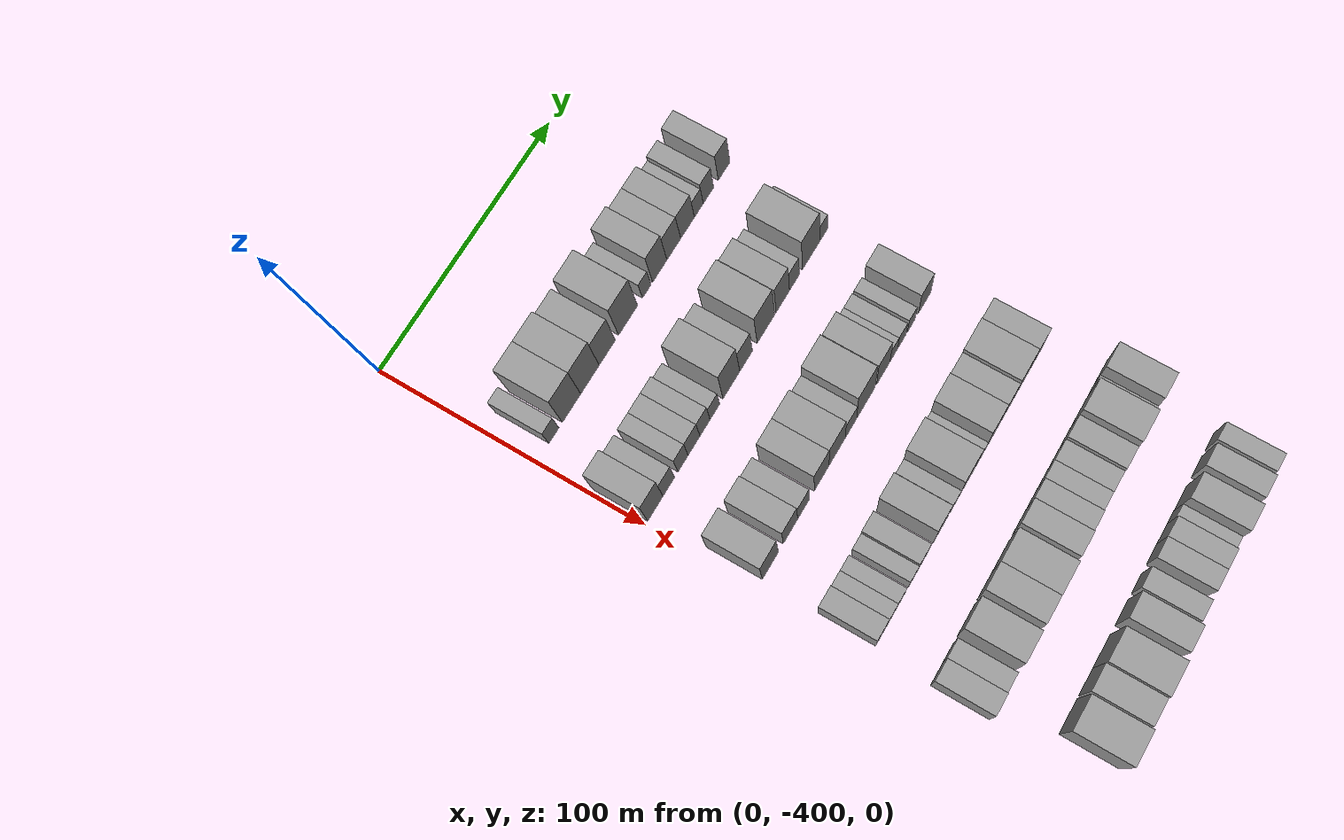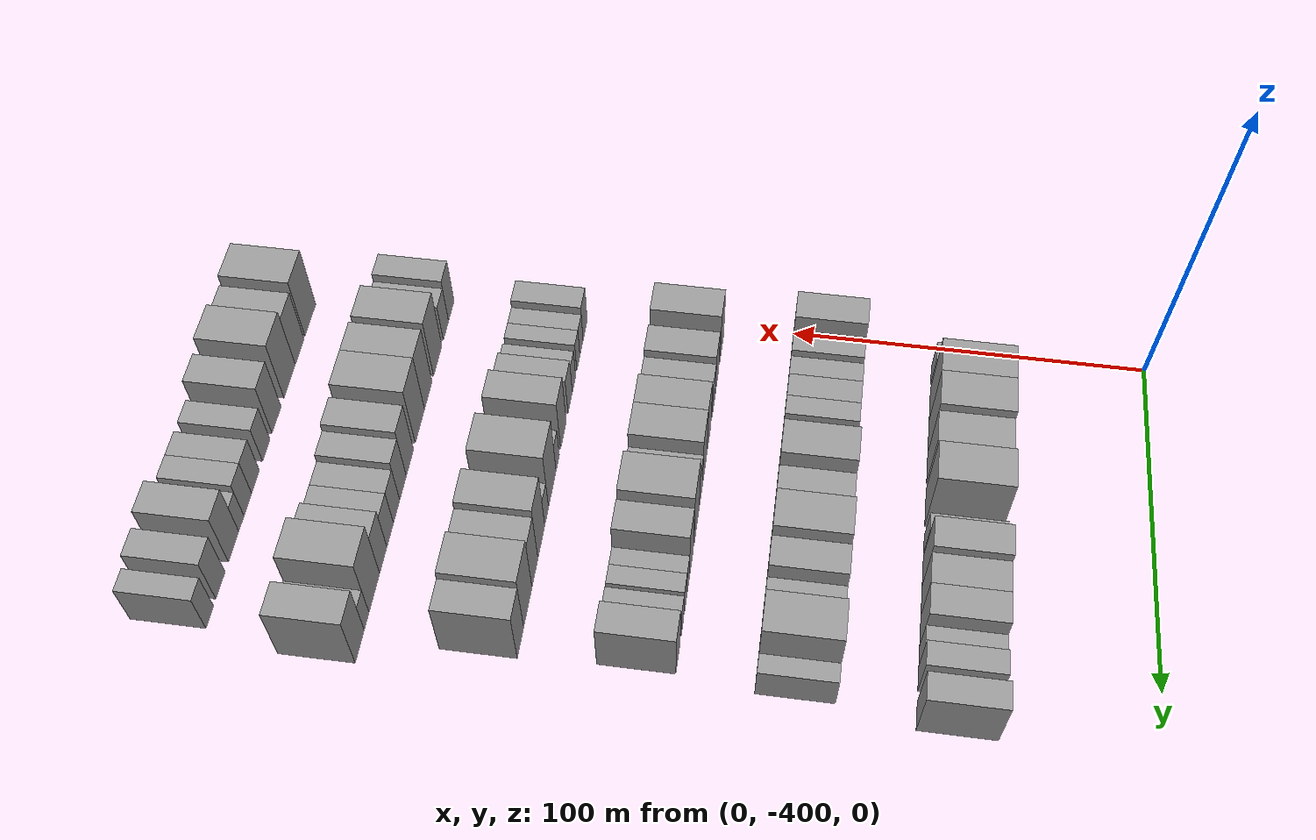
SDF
<sdf version="1.6">
 <world name="default">
  <model name="building_22">
   <static>1</static>
   <pose>50.0000 -390.0511 0 0.000000 0.000000 0.000000</pose>
   <link name="link">
    <pose>0 0 6.00 0 0 0</pose>
    <collision name="collision"><geometry><box><size>20.0000 5.8420 12.0000</size></box></geometry></collision>
    <visual name="visual">
     <cast_shadows>0</cast_shadows>
     <geometry><box><size>20.0000 5.8420 12.0000</size></box></geometry>
     <material>
      <script>
       <uri>model://grey_wall/materials/scripts</uri>
       <uri>model://grey_wall/materials/textures</uri>
       <name>vrc/grey_wall</name>
      </script>
     </material>
    </visual>
   </link>
  </model>
  <model name="building_23">
   <static>1</static>
   <pose>50.0000 -379.7609 0 0.000000 0.000000 0.000000</pose>
   <link name="link">
    <pose>0 0 12.00 0 0 0</pose>
    <collision name="collision"><geometry><box><size>20.0000 10.7384 24.0000</size></box></geometry></collision>
    <visual name="visual">
     <cast_shadows>0</cast_shadows>
     <geometry><box><size>20.0000 10.7384 24.0000</size></box></geometry>
     <material>
      <script>
       <uri>model://grey_wall/materials/scripts</uri>
       <uri>model://grey_wall/materials/textures</uri>
       <name>vrc/grey_wall</name>
      </script>
     </material>
    </visual>
   </link>
  </model>
  <model name="building_24">
   <static>1</static>
   <pose>50.0000 -368.8941 0 0.000000 0.000000 0.000000</pose>
   <link name="link">
    <pose>0 0 12.00 0 0 0</pose>
    <collision name="collision"><geometry><box><size>20.0000 10.9952 24.0000</size></box></geometry></collision>
    <visual name="visual">
     <cast_shadows>0</cast_shadows>
     <geometry><box><size>20.0000 10.9952 24.0000</size></box></geometry>
     <material>
      <script>
       <uri>model://grey_wall/materials/scripts</uri>
       <uri>model://grey_wall/materials/textures</uri>
       <name>vrc/grey_wall</name>
      </script>
     </material>
    </visual>
   </link>
  </model>
  <model name="building_25">
   <static>1</static>
   <pose>50.0000 -358.5665 0 0.000000 0.000000 0.000000</pose>
   <link name="link">
    <pose>0 0 10.50 0 0 0</pose>
    <collision name="collision"><geometry><box><size>20.0000 9.6600 21.0000</size></box></geometry></collision>
    <visual name="visual">
     <cast_shadows>0</cast_shadows>
     <geometry><box><size>20.0000 9.6600 21.0000</size></box></geometry>
     <material>
      <script>
       <uri>model://grey_wall/materials/scripts</uri>
       <uri>model://grey_wall/materials/textures</uri>
       <name>vrc/grey_wall</name>
      </script>
     </material>
    </visual>
   </link>
  </model>
  <model name="building_26">
   <static>1</static>
   <pose>50.0000 -345.9555 0 0.000000 0.000000 0.000000</pose>
   <link name="link">
    <pose>0 0 12.00 0 0 0</pose>
    <collision name="collision"><geometry><box><size>20.0000 11.5620 24.0000</size></box></geometry></collision>
    <visual name="visual">
     <cast_shadows>0</cast_shadows>
     <geometry><box><size>20.0000 11.5620 24.0000</size></box></geometry>
     <material>
      <script>
       <uri>model://grey_wall/materials/scripts</uri>
       <uri>model://grey_wall/materials/textures</uri>
       <name>vrc/grey_wall</name>
      </script>
     </material>
    </visual>
   </link>
  </model>
  <model name="building_27">
   <static>1</static>
   <pose>50.0000 -334.5388 0 0.000000 0.000000 0.000000</pose>
   <link name="link">
    <pose>0 0 6.00 0 0 0</pose>
    <collision name="collision"><geometry><box><size>20.0000 5.2714 12.0000</size></box></geometry></collision>
    <visual name="visual">
     <cast_shadows>0</cast_shadows>
     <geometry><box><size>20.0000 5.2714 12.0000</size></box></geometry>
     <material>
      <script>
       <uri>model://grey_wall/materials/scripts</uri>
       <uri>model://grey_wall/materials/textures</uri>
       <name>vrc/grey_wall</name>
      </script>
     </material>
    </visual>
   </link>
  </model>
  <model name="building_28">
   <static>1</static>
   <pose>50.0000 -326.4957 0 0.000000 0.000000 0.000000</pose>
   <link name="link">
    <pose>0 0 10.50 0 0 0</pose>
    <collision name="collision"><geometry><box><size>20.0000 8.8148 21.0000</size></box></geometry></collision>
    <visual name="visual">
     <cast_shadows>0</cast_shadows>
     <geometry><box><size>20.0000 8.8148 21.0000</size></box></geometry>
     <material>
      <script>
       <uri>model://grey_wall/materials/scripts</uri>
       <uri>model://grey_wall/materials/textures</uri>
       <name>vrc/grey_wall</name>
      </script>
     </material>
    </visual>
   </link>
  </model>
  <model name="building_29">
   <static>1</static>
   <pose>50.0000 -317.7686 0 0.000000 0.000000 0.000000</pose>
   <link name="link">
    <pose>0 0 9.00 0 0 0</pose>
    <collision name="collision"><geometry><box><size>20.0000 8.6393 18.0000</size></box></geometry></collision>
    <visual name="visual">
     <cast_shadows>0</cast_shadows>
     <geometry><box><size>20.0000 8.6393 18.0000</size></box></geometry>
     <material>
      <script>
       <uri>model://grey_wall/materials/scripts</uri>
       <uri>model://grey_wall/materials/textures</uri>
       <name>vrc/grey_wall</name>
      </script>
     </material>
    </visual>
   </link>
  </model>
  <model name="building_30">
   <static>1</static>
   <pose>50.0000 -309.1270 0 0.000000 0.000000 0.000000</pose>
   <link name="link">
    <pose>0 0 9.00 0 0 0</pose>
    <collision name="collision"><geometry><box><size>20.0000 8.6440 18.0000</size></box></geometry></collision>
    <visual name="visual">
     <cast_shadows>0</cast_shadows>
     <geometry><box><size>20.0000 8.6440 18.0000</size></box></geometry>
     <material>
      <script>
       <uri>model://grey_wall/materials/scripts</uri>
       <uri>model://grey_wall/materials/textures</uri>
       <name>vrc/grey_wall</name>
      </script>
     </material>
    </visual>
   </link>
  </model>
  <model name="building_31">
   <static>1</static>
   <pose>50.0000 -302.0066 0 0.000000 0.000000 0.000000</pose>
   <link name="link">
    <pose>0 0 6.00 0 0 0</pose>
    <collision name="collision"><geometry><box><size>20.0000 5.5969 12.0000</size></box></geometry></collision>
    <visual name="visual">
     <cast_shadows>0</cast_shadows>
     <geometry><box><size>20.0000 5.5969 12.0000</size></box></geometry>
     <material>
      <script>
       <uri>model://grey_wall/materials/scripts</uri>
       <uri>model://grey_wall/materials/textures</uri>
       <name>vrc/grey_wall</name>
      </script>
     </material>
    </visual>
   </link>
  </model>
  <model name="building_32">
   <static>1</static>
   <pose>50.0000 -295.8793 0 0.000000 0.000000 0.000000</pose>
   <link name="link">
    <pose>0 0 7.50 0 0 0</pose>
    <collision name="collision"><geometry><box><size>20.0000 6.6576 15.0000</size></box></geometry></collision>
    <visual name="visual">
     <cast_shadows>0</cast_shadows>
     <geometry><box><size>20.0000 6.6576 15.0000</size></box></geometry>
     <material>
      <script>
       <uri>model://grey_wall/materials/scripts</uri>
       <uri>model://grey_wall/materials/textures</uri>
       <name>vrc/grey_wall</name>
      </script>
     </material>
    </visual>
   </link>
  </model>
  <model name="building_33">
   <static>1</static>
   <pose>50.0000 -285.7998 0 0.000000 0.000000 0.000000</pose>
   <link name="link">
    <pose>0 0 9.00 0 0 0</pose>
    <collision name="collision"><geometry><box><size>20.0000 7.5014 18.0000</size></box></geometry></collision>
    <visual name="visual">
     <cast_shadows>0</cast_shadows>
     <geometry><box><size>20.0000 7.5014 18.0000</size></box></geometry>
     <material>
      <script>
       <uri>model://grey_wall/materials/scripts</uri>
       <uri>model://grey_wall/materials/textures</uri>
       <name>vrc/grey_wall</name>
      </script>
     </material>
    </visual>
   </link>
  </model>
  <model name="building_168">
   <static>1</static>
   <pose>90.0000 -394.0648 0 0.000000 0.000000 0.000000</pose>
   <link name="link">
    <pose>0 0 10.50 0 0 0</pose>
    <collision name="collision"><geometry><box><size>20.0000 9.0409 21.0000</size></box></geometry></collision>
    <visual name="visual">
     <cast_shadows>0</cast_shadows>
     <geometry><box><size>20.0000 9.0409 21.0000</size></box></geometry>
     <material>
      <script>
       <uri>model://grey_wall/materials/scripts</uri>
       <uri>model://grey_wall/materials/textures</uri>
       <name>vrc/grey_wall</name>
      </script>
     </material>
    </visual>
   </link>
  </model>
  <model name="building_169">
   <static>1</static>
   <pose>90.0000 -386.0669 0 0.000000 0.000000 0.000000</pose>
   <link name="link">
    <pose>0 0 7.50 0 0 0</pose>
    <collision name="collision"><geometry><box><size>20.0000 6.9549 15.0000</size></box></geometry></collision>
    <visual name="visual">
     <cast_shadows>0</cast_shadows>
     <geometry><box><size>20.0000 6.9549 15.0000</size></box></geometry>
     <material>
      <script>
       <uri>model://grey_wall/materials/scripts</uri>
       <uri>model://grey_wall/materials/textures</uri>
       <name>vrc/grey_wall</name>
      </script>
     </material>
    </visual>
   </link>
  </model>
  <model name="building_170">
   <static>1</static>
   <pose>90.0000 -377.5510 0 0.000000 0.000000 0.000000</pose>
   <link name="link">
    <pose>0 0 7.50 0 0 0</pose>
    <collision name="collision"><geometry><box><size>20.0000 6.0769 15.0000</size></box></geometry></collision>
    <visual name="visual">
     <cast_shadows>0</cast_shadows>
     <geometry><box><size>20.0000 6.0769 15.0000</size></box></geometry>
     <material>
      <script>
       <uri>model://grey_wall/materials/scripts</uri>
       <uri>model://grey_wall/materials/textures</uri>
       <name>vrc/grey_wall</name>
      </script>
     </material>
    </visual>
   </link>
  </model>
  <model name="building_171">
   <static>1</static>
   <pose>90.0000 -370.9142 0 0.000000 0.000000 0.000000</pose>
   <link name="link">
    <pose>0 0 7.50 0 0 0</pose>
    <collision name="collision"><geometry><box><size>20.0000 7.1967 15.0000</size></box></geometry></collision>
    <visual name="visual">
     <cast_shadows>0</cast_shadows>
     <geometry><box><size>20.0000 7.1967 15.0000</size></box></geometry>
     <material>
      <script>
       <uri>model://grey_wall/materials/scripts</uri>
       <uri>model://grey_wall/materials/textures</uri>
       <name>vrc/grey_wall</name>
      </script>
     </material>
    </visual>
   </link>
  </model>
  <model name="building_172">
   <static>1</static>
   <pose>90.0000 -364.2547 0 0.000000 0.000000 0.000000</pose>
   <link name="link">
    <pose>0 0 7.50 0 0 0</pose>
    <collision name="collision"><geometry><box><size>20.0000 6.1224 15.0000</size></box></geometry></collision>
    <visual name="visual">
     <cast_shadows>0</cast_shadows>
     <geometry><box><size>20.0000 6.1224 15.0000</size></box></geometry>
     <material>
      <script>
       <uri>model://grey_wall/materials/scripts</uri>
       <uri>model://grey_wall/materials/textures</uri>
       <name>vrc/grey_wall</name>
      </script>
     </material>
    </visual>
   </link>
  </model>
  <model name="building_173">
   <static>1</static>
   <pose>90.0000 -358.2039 0 0.000000 0.000000 0.000000</pose>
   <link name="link">
    <pose>0 0 6.00 0 0 0</pose>
    <collision name="collision"><geometry><box><size>20.0000 5.9791 12.0000</size></box></geometry></collision>
    <visual name="visual">
     <cast_shadows>0</cast_shadows>
     <geometry><box><size>20.0000 5.9791 12.0000</size></box></geometry>
     <material>
      <script>
       <uri>model://grey_wall/materials/scripts</uri>
       <uri>model://grey_wall/materials/textures</uri>
       <name>vrc/grey_wall</name>
      </script>
     </material>
    </visual>
   </link>
  </model>
  <model name="building_174">
   <static>1</static>
   <pose>90.0000 -348.0177 0 0.000000 0.000000 0.000000</pose>
   <link name="link">
    <pose>0 0 12.00 0 0 0</pose>
    <collision name="collision"><geometry><box><size>20.0000 10.3933 24.0000</size></box></geometry></collision>
    <visual name="visual">
     <cast_shadows>0</cast_shadows>
     <geometry><box><size>20.0000 10.3933 24.0000</size></box></geometry>
     <material>
      <script>
       <uri>model://grey_wall/materials/scripts</uri>
       <uri>model://grey_wall/materials/textures</uri>
       <name>vrc/grey_wall</name>
      </script>
     </material>
    </visual>
   </link>
  </model>
  <model name="building_175">
   <static>1</static>
   <pose>90.0000 -338.8537 0 0.000000 0.000000 0.000000</pose>
   <link name="link">
    <pose>0 0 9.00 0 0 0</pose>
    <collision name="collision"><geometry><box><size>20.0000 7.9347 18.0000</size></box></geometry></collision>
    <visual name="visual">
     <cast_shadows>0</cast_shadows>
     <geometry><box><size>20.0000 7.9347 18.0000</size></box></geometry>
     <material>
      <script>
       <uri>model://grey_wall/materials/scripts</uri>
       <uri>model://grey_wall/materials/textures</uri>
       <name>vrc/grey_wall</name>
      </script>
     </material>
    </visual>
   </link>
  </model>
  <model name="building_176">
   <static>1</static>
   <pose>90.0000 -326.4017 0 0.000000 0.000000 0.000000</pose>
   <link name="link">
    <pose>0 0 12.00 0 0 0</pose>
    <collision name="collision"><geometry><box><size>20.0000 10.9694 24.0000</size></box></geometry></collision>
    <visual name="visual">
     <cast_shadows>0</cast_shadows>
     <geometry><box><size>20.0000 10.9694 24.0000</size></box></geometry>
     <material>
      <script>
       <uri>model://grey_wall/materials/scripts</uri>
       <uri>model://grey_wall/materials/textures</uri>
       <name>vrc/grey_wall</name>
      </script>
     </material>
    </visual>
   </link>
  </model>
  <model name="building_177">
   <static>1</static>
   <pose>90.0000 -315.6308 0 0.000000 0.000000 0.000000</pose>
   <link name="link">
    <pose>0 0 10.50 0 0 0</pose>
    <collision name="collision"><geometry><box><size>20.0000 8.5724 21.0000</size></box></geometry></collision>
    <visual name="visual">
     <cast_shadows>0</cast_shadows>
     <geometry><box><size>20.0000 8.5724 21.0000</size></box></geometry>
     <material>
      <script>
       <uri>model://grey_wall/materials/scripts</uri>
       <uri>model://grey_wall/materials/textures</uri>
       <name>vrc/grey_wall</name>
      </script>
     </material>
    </visual>
   </link>
  </model>
  <model name="building_178">
   <static>1</static>
   <pose>90.0000 -308.1661 0 0.000000 0.000000 0.000000</pose>
   <link name="link">
    <pose>0 0 7.50 0 0 0</pose>
    <collision name="collision"><geometry><box><size>20.0000 6.3571 15.0000</size></box></geometry></collision>
    <visual name="visual">
     <cast_shadows>0</cast_shadows>
     <geometry><box><size>20.0000 6.3571 15.0000</size></box></geometry>
     <material>
      <script>
       <uri>model://grey_wall/materials/scripts</uri>
       <uri>model://grey_wall/materials/textures</uri>
       <name>vrc/grey_wall</name>
      </script>
     </material>
    </visual>
   </link>
  </model>
  <model name="building_179">
   <static>1</static>
   <pose>90.0000 -297.3634 0 0.000000 0.000000 0.000000</pose>
   <link name="link">
    <pose>0 0 12.00 0 0 0</pose>
    <collision name="collision"><geometry><box><size>20.0000 11.2482 24.0000</size></box></geometry></collision>
    <visual name="visual">
     <cast_shadows>0</cast_shadows>
     <geometry><box><size>20.0000 11.2482 24.0000</size></box></geometry>
     <material>
      <script>
       <uri>model://grey_wall/materials/scripts</uri>
       <uri>model://grey_wall/materials/textures</uri>
       <name>vrc/grey_wall</name>
      </script>
     </material>
    </visual>
   </link>
  </model>
  <model name="building_180">
   <static>1</static>
   <pose>90.0000 -289.0930 0 0.000000 0.000000 0.000000</pose>
   <link name="link">
    <pose>0 0 6.00 0 0 0</pose>
    <collision name="collision"><geometry><box><size>20.0000 5.2927 12.0000</size></box></geometry></collision>
    <visual name="visual">
     <cast_shadows>0</cast_shadows>
     <geometry><box><size>20.0000 5.2927 12.0000</size></box></geometry>
     <material>
      <script>
       <uri>model://grey_wall/materials/scripts</uri>
       <uri>model://grey_wall/materials/textures</uri>
       <name>vrc/grey_wall</name>
      </script>
     </material>
    </visual>
   </link>
  </model>
  <model name="building_297">
   <static>1</static>
   <pose>130.0000 -391.6073 0 0.000000 0.000000 0.000000</pose>
   <link name="link">
    <pose>0 0 10.50 0 0 0</pose>
    <collision name="collision"><geometry><box><size>20.0000 9.6499 21.0000</size></box></geometry></collision>
    <visual name="visual">
     <cast_shadows>0</cast_shadows>
     <geometry><box><size>20.0000 9.6499 21.0000</size></box></geometry>
     <material>
      <script>
       <uri>model://grey_wall/materials/scripts</uri>
       <uri>model://grey_wall/materials/textures</uri>
       <name>vrc/grey_wall</name>
      </script>
     </material>
    </visual>
   </link>
  </model>
  <model name="building_298">
   <static>1</static>
   <pose>130.0000 -379.3631 0 0.000000 0.000000 0.000000</pose>
   <link name="link">
    <pose>0 0 9.00 0 0 0</pose>
    <collision name="collision"><geometry><box><size>20.0000 8.8384 18.0000</size></box></geometry></collision>
    <visual name="visual">
     <cast_shadows>0</cast_shadows>
     <geometry><box><size>20.0000 8.8384 18.0000</size></box></geometry>
     <material>
      <script>
       <uri>model://grey_wall/materials/scripts</uri>
       <uri>model://grey_wall/materials/textures</uri>
       <name>vrc/grey_wall</name>
      </script>
     </material>
    </visual>
   </link>
  </model>
  <model name="building_299">
   <static>1</static>
   <pose>130.0000 -371.2778 0 0.000000 0.000000 0.000000</pose>
   <link name="link">
    <pose>0 0 7.50 0 0 0</pose>
    <collision name="collision"><geometry><box><size>20.0000 7.3323 15.0000</size></box></geometry></collision>
    <visual name="visual">
     <cast_shadows>0</cast_shadows>
     <geometry><box><size>20.0000 7.3323 15.0000</size></box></geometry>
     <material>
      <script>
       <uri>model://grey_wall/materials/scripts</uri>
       <uri>model://grey_wall/materials/textures</uri>
       <name>vrc/grey_wall</name>
      </script>
     </material>
    </visual>
   </link>
  </model>
  <model name="building_300">
   <static>1</static>
   <pose>130.0000 -359.9958 0 0.000000 0.000000 0.000000</pose>
   <link name="link">
    <pose>0 0 10.50 0 0 0</pose>
    <collision name="collision"><geometry><box><size>20.0000 9.2318 21.0000</size></box></geometry></collision>
    <visual name="visual">
     <cast_shadows>0</cast_shadows>
     <geometry><box><size>20.0000 9.2318 21.0000</size></box></geometry>
     <material>
      <script>
       <uri>model://grey_wall/materials/scripts</uri>
       <uri>model://grey_wall/materials/textures</uri>
       <name>vrc/grey_wall</name>
      </script>
     </material>
    </visual>
   </link>
  </model>
  <model name="building_301">
   <static>1</static>
   <pose>130.0000 -350.2088 0 0.000000 0.000000 0.000000</pose>
   <link name="link">
    <pose>0 0 10.50 0 0 0</pose>
    <collision name="collision"><geometry><box><size>20.0000 10.3421 21.0000</size></box></geometry></collision>
    <visual name="visual">
     <cast_shadows>0</cast_shadows>
     <geometry><box><size>20.0000 10.3421 21.0000</size></box></geometry>
     <material>
      <script>
       <uri>model://grey_wall/materials/scripts</uri>
       <uri>model://grey_wall/materials/textures</uri>
       <name>vrc/grey_wall</name>
      </script>
     </material>
    </visual>
   </link>
  </model>
  <model name="building_302">
   <static>1</static>
   <pose>130.0000 -341.4178 0 0.000000 0.000000 0.000000</pose>
   <link name="link">
    <pose>0 0 7.50 0 0 0</pose>
    <collision name="collision"><geometry><box><size>20.0000 7.2398 15.0000</size></box></geometry></collision>
    <visual name="visual">
     <cast_shadows>0</cast_shadows>
     <geometry><box><size>20.0000 7.2398 15.0000</size></box></geometry>
     <material>
      <script>
       <uri>model://grey_wall/materials/scripts</uri>
       <uri>model://grey_wall/materials/textures</uri>
       <name>vrc/grey_wall</name>
      </script>
     </material>
    </visual>
   </link>
  </model>
  <model name="building_303">
   <static>1</static>
   <pose>130.0000 -331.9038 0 0.000000 0.000000 0.000000</pose>
   <link name="link">
    <pose>0 0 12.00 0 0 0</pose>
    <collision name="collision"><geometry><box><size>20.0000 11.7884 24.0000</size></box></geometry></collision>
    <visual name="visual">
     <cast_shadows>0</cast_shadows>
     <geometry><box><size>20.0000 11.7884 24.0000</size></box></geometry>
     <material>
      <script>
       <uri>model://grey_wall/materials/scripts</uri>
       <uri>model://grey_wall/materials/textures</uri>
       <name>vrc/grey_wall</name>
      </script>
     </material>
    </visual>
   </link>
  </model>
  <model name="building_304">
   <static>1</static>
   <pose>130.0000 -320.6479 0 0.000000 0.000000 0.000000</pose>
   <link name="link">
    <pose>0 0 10.50 0 0 0</pose>
    <collision name="collision"><geometry><box><size>20.0000 8.7233 21.0000</size></box></geometry></collision>
    <visual name="visual">
     <cast_shadows>0</cast_shadows>
     <geometry><box><size>20.0000 8.7233 21.0000</size></box></geometry>
     <material>
      <script>
       <uri>model://grey_wall/materials/scripts</uri>
       <uri>model://grey_wall/materials/textures</uri>
       <name>vrc/grey_wall</name>
      </script>
     </material>
    </visual>
   </link>
  </model>
  <model name="building_305">
   <static>1</static>
   <pose>130.0000 -313.7650 0 0.000000 0.000000 0.000000</pose>
   <link name="link">
    <pose>0 0 6.00 0 0 0</pose>
    <collision name="collision"><geometry><box><size>20.0000 5.0424 12.0000</size></box></geometry></collision>
    <visual name="visual">
     <cast_shadows>0</cast_shadows>
     <geometry><box><size>20.0000 5.0424 12.0000</size></box></geometry>
     <material>
      <script>
       <uri>model://grey_wall/materials/scripts</uri>
       <uri>model://grey_wall/materials/textures</uri>
       <name>vrc/grey_wall</name>
      </script>
     </material>
    </visual>
   </link>
  </model>
  <model name="building_306">
   <static>1</static>
   <pose>130.0000 -308.5142 0 0.000000 0.000000 0.000000</pose>
   <link name="link">
    <pose>0 0 6.00 0 0 0</pose>
    <collision name="collision"><geometry><box><size>20.0000 5.4593 12.0000</size></box></geometry></collision>
    <visual name="visual">
     <cast_shadows>0</cast_shadows>
     <geometry><box><size>20.0000 5.4593 12.0000</size></box></geometry>
     <material>
      <script>
       <uri>model://grey_wall/materials/scripts</uri>
       <uri>model://grey_wall/materials/textures</uri>
       <name>vrc/grey_wall</name>
      </script>
     </material>
    </visual>
   </link>
  </model>
  <model name="building_307">
   <static>1</static>
   <pose>130.0000 -302.1926 0 0.000000 0.000000 0.000000</pose>
   <link name="link">
    <pose>0 0 6.00 0 0 0</pose>
    <collision name="collision"><geometry><box><size>20.0000 5.1838 12.0000</size></box></geometry></collision>
    <visual name="visual">
     <cast_shadows>0</cast_shadows>
     <geometry><box><size>20.0000 5.1838 12.0000</size></box></geometry>
     <material>
      <script>
       <uri>model://grey_wall/materials/scripts</uri>
       <uri>model://grey_wall/materials/textures</uri>
       <name>vrc/grey_wall</name>
      </script>
     </material>
    </visual>
   </link>
  </model>
  <model name="building_308">
   <static>1</static>
   <pose>130.0000 -293.3657 0 0.000000 0.000000 0.000000</pose>
   <link name="link">
    <pose>0 0 9.00 0 0 0</pose>
    <collision name="collision"><geometry><box><size>20.0000 8.4700 18.0000</size></box></geometry></collision>
    <visual name="visual">
     <cast_shadows>0</cast_shadows>
     <geometry><box><size>20.0000 8.4700 18.0000</size></box></geometry>
     <material>
      <script>
       <uri>model://grey_wall/materials/scripts</uri>
       <uri>model://grey_wall/materials/textures</uri>
       <name>vrc/grey_wall</name>
      </script>
     </material>
    </visual>
   </link>
  </model>
  <model name="building_437">
   <static>1</static>
   <pose>170.0000 -393.1007 0 0.000000 0.000000 0.000000</pose>
   <link name="link">
    <pose>0 0 7.50 0 0 0</pose>
    <collision name="collision"><geometry><box><size>20.0000 7.3663 15.0000</size></box></geometry></collision>
    <visual name="visual">
     <cast_shadows>0</cast_shadows>
     <geometry><box><size>20.0000 7.3663 15.0000</size></box></geometry>
     <material>
      <script>
       <uri>model://grey_wall/materials/scripts</uri>
       <uri>model://grey_wall/materials/textures</uri>
       <name>vrc/grey_wall</name>
      </script>
     </material>
    </visual>
   </link>
  </model>
  <model name="building_438">
   <static>1</static>
   <pose>170.0000 -386.5834 0 0.000000 0.000000 0.000000</pose>
   <link name="link">
    <pose>0 0 6.00 0 0 0</pose>
    <collision name="collision"><geometry><box><size>20.0000 5.6684 12.0000</size></box></geometry></collision>
    <visual name="visual">
     <cast_shadows>0</cast_shadows>
     <geometry><box><size>20.0000 5.6684 12.0000</size></box></geometry>
     <material>
      <script>
       <uri>model://grey_wall/materials/scripts</uri>
       <uri>model://grey_wall/materials/textures</uri>
       <name>vrc/grey_wall</name>
      </script>
     </material>
    </visual>
   </link>
  </model>
  <model name="building_439">
   <static>1</static>
   <pose>170.0000 -381.0757 0 0.000000 0.000000 0.000000</pose>
   <link name="link">
    <pose>0 0 6.00 0 0 0</pose>
    <collision name="collision"><geometry><box><size>20.0000 5.3468 12.0000</size></box></geometry></collision>
    <visual name="visual">
     <cast_shadows>0</cast_shadows>
     <geometry><box><size>20.0000 5.3468 12.0000</size></box></geometry>
     <material>
      <script>
       <uri>model://grey_wall/materials/scripts</uri>
       <uri>model://grey_wall/materials/textures</uri>
       <name>vrc/grey_wall</name>
      </script>
     </material>
    </visual>
   </link>
  </model>
  <model name="building_440">
   <static>1</static>
   <pose>170.0000 -373.6140 0 0.000000 0.000000 0.000000</pose>
   <link name="link">
    <pose>0 0 6.00 0 0 0</pose>
    <collision name="collision"><geometry><box><size>20.0000 5.5766 12.0000</size></box></geometry></collision>
    <visual name="visual">
     <cast_shadows>0</cast_shadows>
     <geometry><box><size>20.0000 5.5766 12.0000</size></box></geometry>
     <material>
      <script>
       <uri>model://grey_wall/materials/scripts</uri>
       <uri>model://grey_wall/materials/textures</uri>
       <name>vrc/grey_wall</name>
      </script>
     </material>
    </visual>
   </link>
  </model>
  <model name="building_441">
   <static>1</static>
   <pose>170.0000 -367.2083 0 0.000000 0.000000 0.000000</pose>
   <link name="link">
    <pose>0 0 7.50 0 0 0</pose>
    <collision name="collision"><geometry><box><size>20.0000 7.2350 15.0000</size></box></geometry></collision>
    <visual name="visual">
     <cast_shadows>0</cast_shadows>
     <geometry><box><size>20.0000 7.2350 15.0000</size></box></geometry>
     <material>
      <script>
       <uri>model://grey_wall/materials/scripts</uri>
       <uri>model://grey_wall/materials/textures</uri>
       <name>vrc/grey_wall</name>
      </script>
     </material>
    </visual>
   </link>
  </model>
  <model name="building_442">
   <static>1</static>
   <pose>170.0000 -356.0742 0 0.000000 0.000000 0.000000</pose>
   <link name="link">
    <pose>0 0 10.50 0 0 0</pose>
    <collision name="collision"><geometry><box><size>20.0000 9.0331 21.0000</size></box></geometry></collision>
    <visual name="visual">
     <cast_shadows>0</cast_shadows>
     <geometry><box><size>20.0000 9.0331 21.0000</size></box></geometry>
     <material>
      <script>
       <uri>model://grey_wall/materials/scripts</uri>
       <uri>model://grey_wall/materials/textures</uri>
       <name>vrc/grey_wall</name>
      </script>
     </material>
    </visual>
   </link>
  </model>
  <model name="building_443">
   <static>1</static>
   <pose>170.0000 -346.9433 0 0.000000 0.000000 0.000000</pose>
   <link name="link">
    <pose>0 0 6.00 0 0 0</pose>
    <collision name="collision"><geometry><box><size>20.0000 5.2286 12.0000</size></box></geometry></collision>
    <visual name="visual">
     <cast_shadows>0</cast_shadows>
     <geometry><box><size>20.0000 5.2286 12.0000</size></box></geometry>
     <material>
      <script>
       <uri>model://grey_wall/materials/scripts</uri>
       <uri>model://grey_wall/materials/textures</uri>
       <name>vrc/grey_wall</name>
      </script>
     </material>
    </visual>
   </link>
  </model>
  <model name="building_444">
   <static>1</static>
   <pose>170.0000 -338.5435 0 0.000000 0.000000 0.000000</pose>
   <link name="link">
    <pose>0 0 12.00 0 0 0</pose>
    <collision name="collision"><geometry><box><size>20.0000 11.5711 24.0000</size></box></geometry></collision>
    <visual name="visual">
     <cast_shadows>0</cast_shadows>
     <geometry><box><size>20.0000 11.5711 24.0000</size></box></geometry>
     <material>
      <script>
       <uri>model://grey_wall/materials/scripts</uri>
       <uri>model://grey_wall/materials/textures</uri>
       <name>vrc/grey_wall</name>
      </script>
     </material>
    </visual>
   </link>
  </model>
  <model name="building_445">
   <static>1</static>
   <pose>170.0000 -329.8842 0 0.000000 0.000000 0.000000</pose>
   <link name="link">
    <pose>0 0 6.00 0 0 0</pose>
    <collision name="collision"><geometry><box><size>20.0000 5.7475 12.0000</size></box></geometry></collision>
    <visual name="visual">
     <cast_shadows>0</cast_shadows>
     <geometry><box><size>20.0000 5.7475 12.0000</size></box></geometry>
     <material>
      <script>
       <uri>model://grey_wall/materials/scripts</uri>
       <uri>model://grey_wall/materials/textures</uri>
       <name>vrc/grey_wall</name>
      </script>
     </material>
    </visual>
   </link>
  </model>
  <model name="building_446">
   <static>1</static>
   <pose>170.0000 -321.9696 0 0.000000 0.000000 0.000000</pose>
   <link name="link">
    <pose>0 0 12.00 0 0 0</pose>
    <collision name="collision"><geometry><box><size>20.0000 10.0817 24.0000</size></box></geometry></collision>
    <visual name="visual">
     <cast_shadows>0</cast_shadows>
     <geometry><box><size>20.0000 10.0817 24.0000</size></box></geometry>
     <material>
      <script>
       <uri>model://grey_wall/materials/scripts</uri>
       <uri>model://grey_wall/materials/textures</uri>
       <name>vrc/grey_wall</name>
      </script>
     </material>
    </visual>
   </link>
  </model>
  <model name="building_447">
   <static>1</static>
   <pose>170.0000 -312.6576 0 0.000000 0.000000 0.000000</pose>
   <link name="link">
    <pose>0 0 10.50 0 0 0</pose>
    <collision name="collision"><geometry><box><size>20.0000 8.5422 21.0000</size></box></geometry></collision>
    <visual name="visual">
     <cast_shadows>0</cast_shadows>
     <geometry><box><size>20.0000 8.5422 21.0000</size></box></geometry>
     <material>
      <script>
       <uri>model://grey_wall/materials/scripts</uri>
       <uri>model://grey_wall/materials/textures</uri>
       <name>vrc/grey_wall</name>
      </script>
     </material>
    </visual>
   </link>
  </model>
  <model name="building_448">
   <static>1</static>
   <pose>170.0000 -302.5746 0 0.000000 0.000000 0.000000</pose>
   <link name="link">
    <pose>0 0 12.00 0 0 0</pose>
    <collision name="collision"><geometry><box><size>20.0000 11.6238 24.0000</size></box></geometry></collision>
    <visual name="visual">
     <cast_shadows>0</cast_shadows>
     <geometry><box><size>20.0000 11.6238 24.0000</size></box></geometry>
     <material>
      <script>
       <uri>model://grey_wall/materials/scripts</uri>
       <uri>model://grey_wall/materials/textures</uri>
       <name>vrc/grey_wall</name>
      </script>
     </material>
    </visual>
   </link>
  </model>
  <model name="building_449">
   <static>1</static>
   <pose>170.0000 -292.4098 0 0.000000 0.000000 0.000000</pose>
   <link name="link">
    <pose>0 0 10.50 0 0 0</pose>
    <collision name="collision"><geometry><box><size>20.0000 8.7058 21.0000</size></box></geometry></collision>
    <visual name="visual">
     <cast_shadows>0</cast_shadows>
     <geometry><box><size>20.0000 8.7058 21.0000</size></box></geometry>
     <material>
      <script>
       <uri>model://grey_wall/materials/scripts</uri>
       <uri>model://grey_wall/materials/textures</uri>
       <name>vrc/grey_wall</name>
      </script>
     </material>
    </visual>
   </link>
  </model>
  <model name="building_567">
   <static>1</static>
   <pose>210.0000 -394.9767 0 0.000000 0.000000 0.000000</pose>
   <link name="link">
    <pose>0 0 9.00 0 0 0</pose>
    <collision name="collision"><geometry><box><size>20.0000 7.6325 18.0000</size></box></geometry></collision>
    <visual name="visual">
     <cast_shadows>0</cast_shadows>
     <geometry><box><size>20.0000 7.6325 18.0000</size></box></geometry>
     <material>
      <script>
       <uri>model://grey_wall/materials/scripts</uri>
       <uri>model://grey_wall/materials/textures</uri>
       <name>vrc/grey_wall</name>
      </script>
     </material>
    </visual>
   </link>
  </model>
  <model name="building_568">
   <static>1</static>
   <pose>210.0000 -387.6490 0 0.000000 0.000000 0.000000</pose>
   <link name="link">
    <pose>0 0 7.50 0 0 0</pose>
    <collision name="collision"><geometry><box><size>20.0000 7.0229 15.0000</size></box></geometry></collision>
    <visual name="visual">
     <cast_shadows>0</cast_shadows>
     <geometry><box><size>20.0000 7.0229 15.0000</size></box></geometry>
     <material>
      <script>
       <uri>model://grey_wall/materials/scripts</uri>
       <uri>model://grey_wall/materials/textures</uri>
       <name>vrc/grey_wall</name>
      </script>
     </material>
    </visual>
   </link>
  </model>
  <model name="building_569">
   <static>1</static>
   <pose>210.0000 -376.6925 0 0.000000 0.000000 0.000000</pose>
   <link name="link">
    <pose>0 0 12.00 0 0 0</pose>
    <collision name="collision"><geometry><box><size>20.0000 10.8902 24.0000</size></box></geometry></collision>
    <visual name="visual">
     <cast_shadows>0</cast_shadows>
     <geometry><box><size>20.0000 10.8902 24.0000</size></box></geometry>
     <material>
      <script>
       <uri>model://grey_wall/materials/scripts</uri>
       <uri>model://grey_wall/materials/textures</uri>
       <name>vrc/grey_wall</name>
      </script>
     </material>
    </visual>
   </link>
  </model>
  <model name="building_570">
   <static>1</static>
   <pose>210.0000 -364.4446 0 0.000000 0.000000 0.000000</pose>
   <link name="link">
    <pose>0 0 12.00 0 0 0</pose>
    <collision name="collision"><geometry><box><size>20.0000 9.6057 24.0000</size></box></geometry></collision>
    <visual name="visual">
     <cast_shadows>0</cast_shadows>
     <geometry><box><size>20.0000 9.6057 24.0000</size></box></geometry>
     <material>
      <script>
       <uri>model://grey_wall/materials/scripts</uri>
       <uri>model://grey_wall/materials/textures</uri>
       <name>vrc/grey_wall</name>
      </script>
     </material>
    </visual>
   </link>
  </model>
  <model name="building_571">
   <static>1</static>
   <pose>210.0000 -353.8946 0 0.000000 0.000000 0.000000</pose>
   <link name="link">
    <pose>0 0 12.00 0 0 0</pose>
    <collision name="collision"><geometry><box><size>20.0000 11.4943 24.0000</size></box></geometry></collision>
    <visual name="visual">
     <cast_shadows>0</cast_shadows>
     <geometry><box><size>20.0000 11.4943 24.0000</size></box></geometry>
     <material>
      <script>
       <uri>model://grey_wall/materials/scripts</uri>
       <uri>model://grey_wall/materials/textures</uri>
       <name>vrc/grey_wall</name>
      </script>
     </material>
    </visual>
   </link>
  </model>
  <model name="building_572">
   <static>1</static>
   <pose>210.0000 -341.7567 0 0.000000 0.000000 0.000000</pose>
   <link name="link">
    <pose>0 0 10.50 0 0 0</pose>
    <collision name="collision"><geometry><box><size>20.0000 8.7815 21.0000</size></box></geometry></collision>
    <visual name="visual">
     <cast_shadows>0</cast_shadows>
     <geometry><box><size>20.0000 8.7815 21.0000</size></box></geometry>
     <material>
      <script>
       <uri>model://grey_wall/materials/scripts</uri>
       <uri>model://grey_wall/materials/textures</uri>
       <name>vrc/grey_wall</name>
      </script>
     </material>
    </visual>
   </link>
  </model>
  <model name="building_573">
   <static>1</static>
   <pose>210.0000 -333.5121 0 0.000000 0.000000 0.000000</pose>
   <link name="link">
    <pose>0 0 9.00 0 0 0</pose>
    <collision name="collision"><geometry><box><size>20.0000 7.7076 18.0000</size></box></geometry></collision>
    <visual name="visual">
     <cast_shadows>0</cast_shadows>
     <geometry><box><size>20.0000 7.7076 18.0000</size></box></geometry>
     <material>
      <script>
       <uri>model://grey_wall/materials/scripts</uri>
       <uri>model://grey_wall/materials/textures</uri>
       <name>vrc/grey_wall</name>
      </script>
     </material>
    </visual>
   </link>
  </model>
  <model name="building_574">
   <static>1</static>
   <pose>210.0000 -326.0404 0 0.000000 0.000000 0.000000</pose>
   <link name="link">
    <pose>0 0 7.50 0 0 0</pose>
    <collision name="collision"><geometry><box><size>20.0000 7.2357 15.0000</size></box></geometry></collision>
    <visual name="visual">
     <cast_shadows>0</cast_shadows>
     <geometry><box><size>20.0000 7.2357 15.0000</size></box></geometry>
     <material>
      <script>
       <uri>model://grey_wall/materials/scripts</uri>
       <uri>model://grey_wall/materials/textures</uri>
       <name>vrc/grey_wall</name>
      </script>
     </material>
    </visual>
   </link>
  </model>
  <model name="building_575">
   <static>1</static>
   <pose>210.0000 -318.7363 0 0.000000 0.000000 0.000000</pose>
   <link name="link">
    <pose>0 0 7.50 0 0 0</pose>
    <collision name="collision"><geometry><box><size>20.0000 7.3725 15.0000</size></box></geometry></collision>
    <visual name="visual">
     <cast_shadows>0</cast_shadows>
     <geometry><box><size>20.0000 7.3725 15.0000</size></box></geometry>
     <material>
      <script>
       <uri>model://grey_wall/materials/scripts</uri>
       <uri>model://grey_wall/materials/textures</uri>
       <name>vrc/grey_wall</name>
      </script>
     </material>
    </visual>
   </link>
  </model>
  <model name="building_576">
   <static>1</static>
   <pose>210.0000 -311.0718 0 0.000000 0.000000 0.000000</pose>
   <link name="link">
    <pose>0 0 9.00 0 0 0</pose>
    <collision name="collision"><geometry><box><size>20.0000 7.9565 18.0000</size></box></geometry></collision>
    <visual name="visual">
     <cast_shadows>0</cast_shadows>
     <geometry><box><size>20.0000 7.9565 18.0000</size></box></geometry>
     <material>
      <script>
       <uri>model://grey_wall/materials/scripts</uri>
       <uri>model://grey_wall/materials/textures</uri>
       <name>vrc/grey_wall</name>
      </script>
     </material>
    </visual>
   </link>
  </model>
  <model name="building_577">
   <static>1</static>
   <pose>210.0000 -301.3837 0 0.000000 0.000000 0.000000</pose>
   <link name="link">
    <pose>0 0 12.00 0 0 0</pose>
    <collision name="collision"><geometry><box><size>20.0000 11.4197 24.0000</size></box></geometry></collision>
    <visual name="visual">
     <cast_shadows>0</cast_shadows>
     <geometry><box><size>20.0000 11.4197 24.0000</size></box></geometry>
     <material>
      <script>
       <uri>model://grey_wall/materials/scripts</uri>
       <uri>model://grey_wall/materials/textures</uri>
       <name>vrc/grey_wall</name>
      </script>
     </material>
    </visual>
   </link>
  </model>
  <model name="building_578">
   <static>1</static>
   <pose>210.0000 -293.1694 0 0.000000 0.000000 0.000000</pose>
   <link name="link">
    <pose>0 0 6.00 0 0 0</pose>
    <collision name="collision"><geometry><box><size>20.0000 5.0089 12.0000</size></box></geometry></collision>
    <visual name="visual">
     <cast_shadows>0</cast_shadows>
     <geometry><box><size>20.0000 5.0089 12.0000</size></box></geometry>
     <material>
      <script>
       <uri>model://grey_wall/materials/scripts</uri>
       <uri>model://grey_wall/materials/textures</uri>
       <name>vrc/grey_wall</name>
      </script>
     </material>
    </visual>
   </link>
  </model>
  <model name="building_579">
   <static>1</static>
   <pose>210.0000 -286.0375 0 0.000000 0.000000 0.000000</pose>
   <link name="link">
    <pose>0 0 10.50 0 0 0</pose>
    <collision name="collision"><geometry><box><size>20.0000 9.2550 21.0000</size></box></geometry></collision>
    <visual name="visual">
     <cast_shadows>0</cast_shadows>
     <geometry><box><size>20.0000 9.2550 21.0000</size></box></geometry>
     <material>
      <script>
       <uri>model://grey_wall/materials/scripts</uri>
       <uri>model://grey_wall/materials/textures</uri>
       <name>vrc/grey_wall</name>
      </script>
     </material>
    </visual>
   </link>
  </model>
  <model name="building_710">
   <static>1</static>
   <pose>250.0000 -386.2293 0 0.000000 0.000000 0.000000</pose>
   <link name="link">
    <pose>0 0 12.00 0 0 0</pose>
    <collision name="collision"><geometry><box><size>20.0000 11.9785 24.0000</size></box></geometry></collision>
    <visual name="visual">
     <cast_shadows>0</cast_shadows>
     <geometry><box><size>20.0000 11.9785 24.0000</size></box></geometry>
     <material>
      <script>
       <uri>model://grey_wall/materials/scripts</uri>
       <uri>model://grey_wall/materials/textures</uri>
       <name>vrc/grey_wall</name>
      </script>
     </material>
    </visual>
   </link>
  </model>
  <model name="building_711">
   <static>1</static>
   <pose>250.0000 -374.5732 0 0.000000 0.000000 0.000000</pose>
   <link name="link">
    <pose>0 0 10.50 0 0 0</pose>
    <collision name="collision"><geometry><box><size>20.0000 9.3337 21.0000</size></box></geometry></collision>
    <visual name="visual">
     <cast_shadows>0</cast_shadows>
     <geometry><box><size>20.0000 9.3337 21.0000</size></box></geometry>
     <material>
      <script>
       <uri>model://grey_wall/materials/scripts</uri>
       <uri>model://grey_wall/materials/textures</uri>
       <name>vrc/grey_wall</name>
      </script>
     </material>
    </visual>
   </link>
  </model>
  <model name="building_712">
   <static>1</static>
   <pose>250.0000 -364.0508 0 0.000000 0.000000 0.000000</pose>
   <link name="link">
    <pose>0 0 12.00 0 0 0</pose>
    <collision name="collision"><geometry><box><size>20.0000 11.7110 24.0000</size></box></geometry></collision>
    <visual name="visual">
     <cast_shadows>0</cast_shadows>
     <geometry><box><size>20.0000 11.7110 24.0000</size></box></geometry>
     <material>
      <script>
       <uri>model://grey_wall/materials/scripts</uri>
       <uri>model://grey_wall/materials/textures</uri>
       <name>vrc/grey_wall</name>
      </script>
     </material>
    </visual>
   </link>
  </model>
  <model name="building_713">
   <static>1</static>
   <pose>250.0000 -350.6379 0 0.000000 0.000000 0.000000</pose>
   <link name="link">
    <pose>0 0 10.50 0 0 0</pose>
    <collision name="collision"><geometry><box><size>20.0000 9.1149 21.0000</size></box></geometry></collision>
    <visual name="visual">
     <cast_shadows>0</cast_shadows>
     <geometry><box><size>20.0000 9.1149 21.0000</size></box></geometry>
     <material>
      <script>
       <uri>model://grey_wall/materials/scripts</uri>
       <uri>model://grey_wall/materials/textures</uri>
       <name>vrc/grey_wall</name>
      </script>
     </material>
    </visual>
   </link>
  </model>
  <model name="building_714">
   <static>1</static>
   <pose>250.0000 -340.4480 0 0.000000 0.000000 0.000000</pose>
   <link name="link">
    <pose>0 0 7.50 0 0 0</pose>
    <collision name="collision"><geometry><box><size>20.0000 7.2649 15.0000</size></box></geometry></collision>
    <visual name="visual">
     <cast_shadows>0</cast_shadows>
     <geometry><box><size>20.0000 7.2649 15.0000</size></box></geometry>
     <material>
      <script>
       <uri>model://grey_wall/materials/scripts</uri>
       <uri>model://grey_wall/materials/textures</uri>
       <name>vrc/grey_wall</name>
      </script>
     </material>
    </visual>
   </link>
  </model>
  <model name="building_715">
   <static>1</static>
   <pose>250.0000 -330.1103 0 0.000000 0.000000 0.000000</pose>
   <link name="link">
    <pose>0 0 7.50 0 0 0</pose>
    <collision name="collision"><geometry><box><size>20.0000 7.4105 15.0000</size></box></geometry></collision>
    <visual name="visual">
     <cast_shadows>0</cast_shadows>
     <geometry><box><size>20.0000 7.4105 15.0000</size></box></geometry>
     <material>
      <script>
       <uri>model://grey_wall/materials/scripts</uri>
       <uri>model://grey_wall/materials/textures</uri>
       <name>vrc/grey_wall</name>
      </script>
     </material>
    </visual>
   </link>
  </model>
  <model name="building_716">
   <static>1</static>
   <pose>250.0000 -322.8423 0 0.000000 0.000000 0.000000</pose>
   <link name="link">
    <pose>0 0 7.50 0 0 0</pose>
    <collision name="collision"><geometry><box><size>20.0000 7.1255 15.0000</size></box></geometry></collision>
    <visual name="visual">
     <cast_shadows>0</cast_shadows>
     <geometry><box><size>20.0000 7.1255 15.0000</size></box></geometry>
     <material>
      <script>
       <uri>model://grey_wall/materials/scripts</uri>
       <uri>model://grey_wall/materials/textures</uri>
       <name>vrc/grey_wall</name>
      </script>
     </material>
    </visual>
   </link>
  </model>
  <model name="building_717">
   <static>1</static>
   <pose>250.0000 -316.8735 0 0.000000 0.000000 0.000000</pose>
   <link name="link">
    <pose>0 0 6.00 0 0 0</pose>
    <collision name="collision"><geometry><box><size>20.0000 4.8122 12.0000</size></box></geometry></collision>
    <visual name="visual">
     <cast_shadows>0</cast_shadows>
     <geometry><box><size>20.0000 4.8122 12.0000</size></box></geometry>
     <material>
      <script>
       <uri>model://grey_wall/materials/scripts</uri>
       <uri>model://grey_wall/materials/textures</uri>
       <name>vrc/grey_wall</name>
      </script>
     </material>
    </visual>
   </link>
  </model>
  <model name="building_718">
   <static>1</static>
   <pose>250.0000 -309.8396 0 0.000000 0.000000 0.000000</pose>
   <link name="link">
    <pose>0 0 10.50 0 0 0</pose>
    <collision name="collision"><geometry><box><size>20.0000 9.2556 21.0000</size></box></geometry></collision>
    <visual name="visual">
     <cast_shadows>0</cast_shadows>
     <geometry><box><size>20.0000 9.2556 21.0000</size></box></geometry>
     <material>
      <script>
       <uri>model://grey_wall/materials/scripts</uri>
       <uri>model://grey_wall/materials/textures</uri>
       <name>vrc/grey_wall</name>
      </script>
     </material>
    </visual>
   </link>
  </model>
  <model name="building_719">
   <static>1</static>
   <pose>250.0000 -298.2152 0 0.000000 0.000000 0.000000</pose>
   <link name="link">
    <pose>0 0 9.00 0 0 0</pose>
    <collision name="collision"><geometry><box><size>20.0000 7.9932 18.0000</size></box></geometry></collision>
    <visual name="visual">
     <cast_shadows>0</cast_shadows>
     <geometry><box><size>20.0000 7.9932 18.0000</size></box></geometry>
     <material>
      <script>
       <uri>model://grey_wall/materials/scripts</uri>
       <uri>model://grey_wall/materials/textures</uri>
       <name>vrc/grey_wall</name>
      </script>
     </material>
    </visual>
   </link>
  </model>
  <model name="building_720">
   <static>1</static>
   <pose>250.0000 -289.0047 0 0.000000 0.000000 0.000000</pose>
   <link name="link">
    <pose>0 0 7.50 0 0 0</pose>
    <collision name="collision"><geometry><box><size>20.0000 6.4277 15.0000</size></box></geometry></collision>
    <visual name="visual">
     <cast_shadows>0</cast_shadows>
     <geometry><box><size>20.0000 6.4277 15.0000</size></box></geometry>
     <material>
      <script>
       <uri>model://grey_wall/materials/scripts</uri>
       <uri>model://grey_wall/materials/textures</uri>
       <name>vrc/grey_wall</name>
      </script>
     </material>
    </visual>
   </link>
  </model>
 </world>
</sdf>
